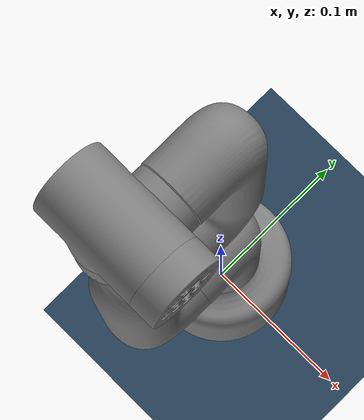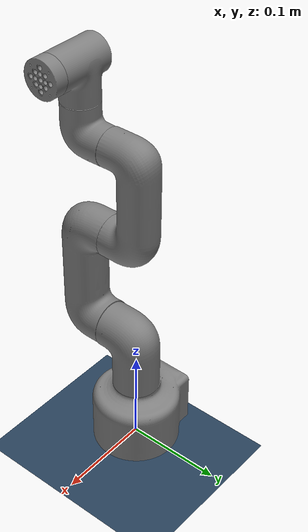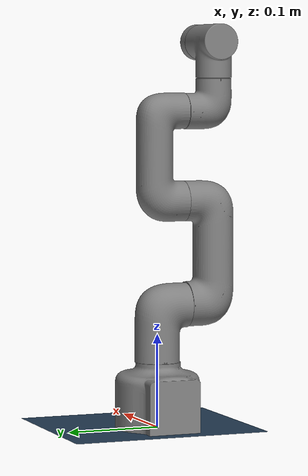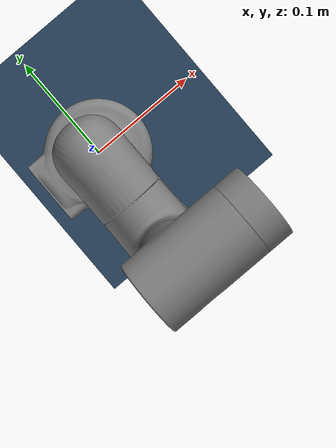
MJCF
<mujoco model="cobot scene">
  <include file="mycobot_280_improve.xml"/>

  <statistic center="0 0 0.1" extent="0.8"/>

  <visual>
    <headlight diffuse="0.6 0.6 0.6" ambient="0.3 0.3 0.3" specular="0 0 0"/>
    <rgba haze="0.15 0.25 0.35 1"/>
    <global azimuth="-130" elevation="-20"/>
  </visual>

  <asset>
    <texture type="skybox" builtin="gradient" rgb1="0.3 0.5 0.7" rgb2="0 0 0" width="512" height="3072"/>
    <texture type="2d" name="groundplane" builtin="checker" mark="edge" rgb1="0.2 0.3 0.4" rgb2="0.1 0.2 0.3"
      markrgb="0.8 0.8 0.8" width="300" height="300"/>
    <material name="groundplane" texture="groundplane" texuniform="true" texrepeat="5 5" reflectance="0.2"/>
  </asset>

  <worldbody>
    <light pos="0 0 1.5" dir="0 0 -1" directional="true"/>
    <geom name="floor" size="0 0 0.05" type="plane" material="groundplane"/>
  </worldbody>
</mujoco>

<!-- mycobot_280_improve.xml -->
<mujoco model="firefighter">
  <compiler angle="radian"/>

  <asset>
    <mesh name="joint1" content_type="model/obj" file="joint1.obj"/>
    <mesh name="joint2" content_type="model/obj" file="joint2.obj"/>
    <mesh name="joint3" content_type="model/obj" file="joint3.obj"/>
    <mesh name="joint4" content_type="model/obj" file="joint4.obj"/>
    <mesh name="joint5" content_type="model/obj" file="joint5.obj"/>
    <mesh name="joint6" content_type="model/obj" file="joint6.obj"/>
    <mesh name="joint7" content_type="model/obj" file="joint7.obj"/>
  </asset>

  <worldbody>
    <geom quat="0.707105 0 0 -0.707108" type="mesh" mesh="joint1"/>
    <body name="joint2" pos="0 0 0.13156">
      <inertial pos="0 0 0" mass="0.1" diaginertia="0.03 0.03 0.03"/>
      <joint name="joint2_to_joint1" pos="0 0 0" axis="0 0 1" range="-2.9321 2.9321" actuatorfrcrange="-1000 1000"/>
      <geom pos="0 0 -0.06096" quat="0.707105 0 0 -0.707108" type="mesh" mesh="joint2"/>
      <body name="joint3" quat="0.499998 0.500002 0.5 -0.5">
        <inertial pos="0 0 0" mass="0.1" diaginertia="0.03 0.03 0.03"/>
        <joint name="joint3_to_joint2" pos="0 0 0" axis="0 0 1" range="-2.4434 2.4434" actuatorfrcrange="-1000 1000"/>
        <geom pos="0 0 0.03256" quat="0.707105 0 -0.707108 0" type="mesh" mesh="joint3"/>
        <body name="joint4" pos="-0.1104 0 0">
          <inertial pos="0 0 0" mass="0.1" diaginertia="0.03 0.03 0.03"/>
          <joint name="joint4_to_joint3" pos="0 0 0" axis="0 0 1" range="-2.6179 2.6179" actuatorfrcrange="-1000 1000"/>
          <geom pos="0 0 0.03056" quat="0.707105 0 -0.707108 0" type="mesh" mesh="joint4"/>
          <body name="joint5" pos="-0.096 0 0.06462" quat="0.707105 0 0 -0.707108">
            <inertial pos="0 0 0" mass="0.1" diaginertia="0.03 0.03 0.03"/>
            <joint name="joint5_to_joint4" pos="0 0 0" axis="0 0 1" range="-2.6179 2.6179" actuatorfrcrange="-1000 1000"/>
            <geom pos="0 0 -0.03356" quat="0.707105 -0.707108 0 0" type="mesh" mesh="joint5"/>
            <body name="joint6" pos="0 -0.07318 0" quat="0.499998 0.5 -0.5 0.500002">
              <inertial pos="0 0 0" mass="0.1" diaginertia="0.03 0.03 0.03"/>
              <joint name="joint6_to_joint5" pos="0 0 0" axis="0 0 1" range="-2.7052 2.7925" actuatorfrcrange="-1000 1000"/>
              <geom pos="0 0 -0.038" quat="1 0 0 0" type="mesh" mesh="joint6"/>
              <body name="joint6_flange" pos="0 0.0456 0" quat="0.707105 -0.707108 0 0">
                <inertial pos="0 0 0" mass="0.1" diaginertia="0.03 0.03 0.03"/>
                <joint name="joint6output_to_joint6" pos="0 0 0" axis="0 0 1" range="-3.14 3.14159" actuatorfrcrange="-1000 1000"/>
                <geom pos="0 0 -0.012" quat="1 0 0 0" type="mesh" mesh="joint7"/>
              </body>
            </body>
          </body>
        </body>
      </body>
    </body>
  </worldbody>

<actuator>
  <position joint="joint2_to_joint1" ctrlrange="-2.9321 2.9321" kp="100"/>
  <position joint="joint3_to_joint2" ctrlrange="-2.4434 2.4434" kp="100"/>
  <position joint="joint4_to_joint3" ctrlrange="-2.6179 2.6179" kp="100"/>
  <position joint="joint5_to_joint4" ctrlrange="-2.6179 2.6179" kp="100"/>
  <position joint="joint6_to_joint5" ctrlrange="-2.7052 2.7925" kp="100"/>
  <position joint="joint6output_to_joint6" ctrlrange="-3.14 3.14159" kp="100"/>
</actuator>

</mujoco>
